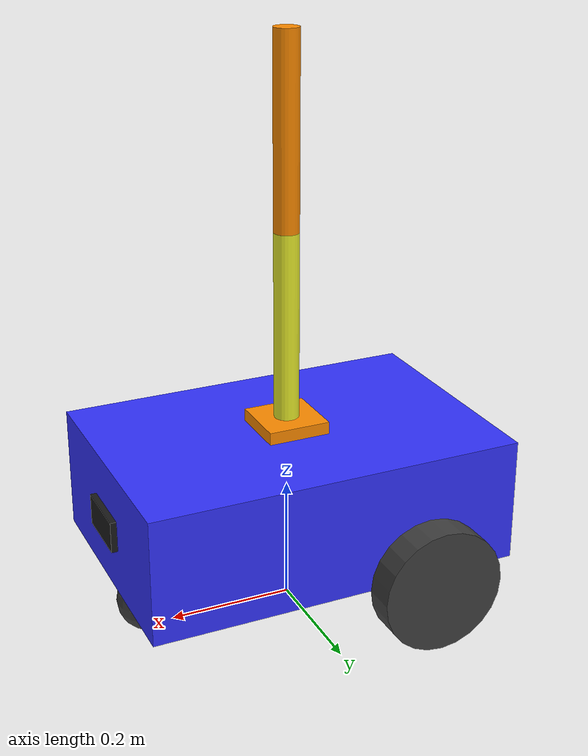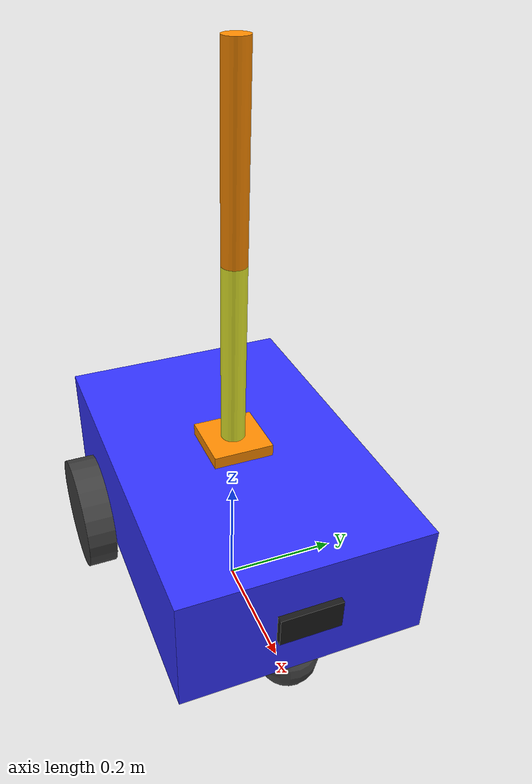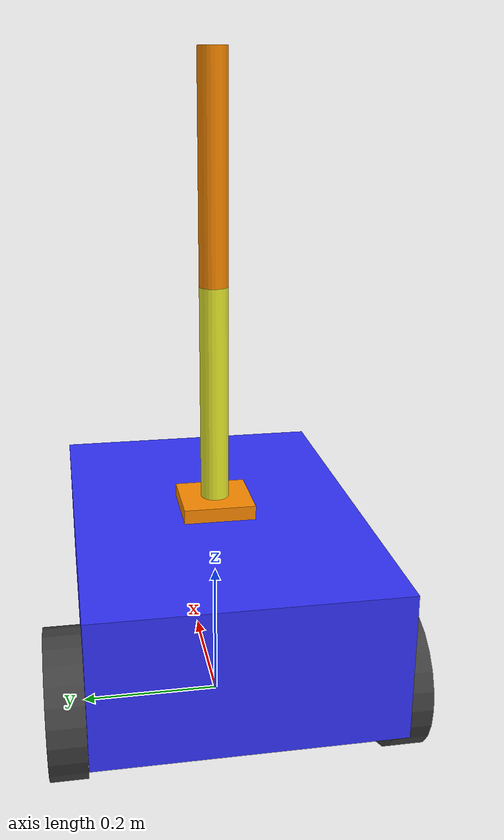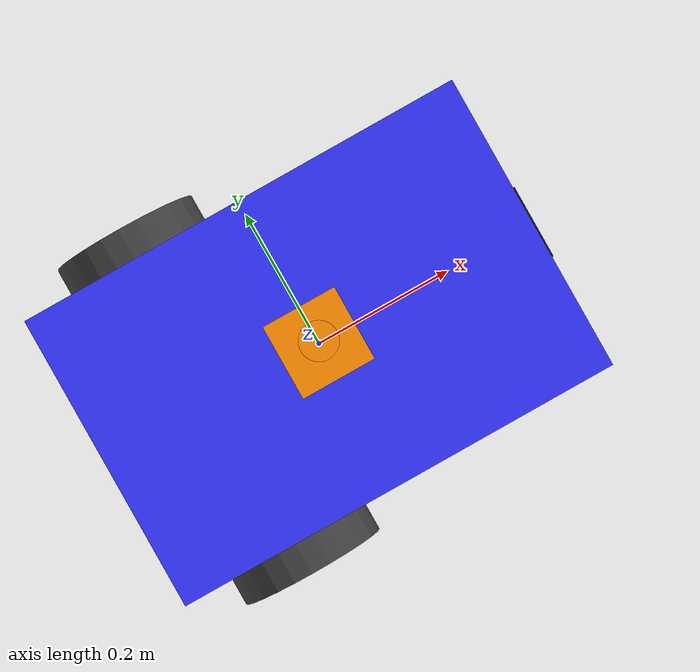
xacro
<?xml version="1.0"?>
<robot xmlns:xacro="http://www.ros.org/wiki/xacro">
    <!-- part Specifications -->
    <xacro:property name="main_base_length" value="0.6" />
    <xacro:property name="main_base_width" value="0.4" />
    <xacro:property name="main_base_height" value="0.2" />
    <xacro:property name="wheel_radius" value="0.1" />
    <xacro:property name="wheel_length" value="0.05" />
    <xacro:property name="caster_wheel_radius" value="0.05" />
    <xacro:include filename="common_properties.xacro" />

    <link name="base_footprint" />
    <link name="main_base">
        <visual>
            <geometry>
                <box size="${main_base_length} ${main_base_width} ${main_base_height}" />
            </geometry>
            <origin xyz="0 0 0" rpy="0 0 0" />
            <material name="blue" />
        </visual>
        <collision>
            <geometry>
                <box size="${main_base_length} ${main_base_width} ${main_base_height}" />
            </geometry>
            <origin xyz="0 0 0" rpy="0 0 0" />
        </collision>
        <xacro:box_inertial m="0.6" l="${main_base_length}" w="${main_base_width}" h="${main_base_height}" xyz="0 0 0" rpy="0 0 0" />
    </link>
    <joint name="main_base_footprint" type="fixed">
        <parent link="base_footprint" />
        <child link="main_base" />
        <origin xyz="0 0 ${0.5*main_base_height+wheel_radius}" rpy="0 0 0" />
    </joint>

    <link name="caster_wheel_link">
        <visual>
            <geometry>
                <sphere radius="${caster_wheel_radius}" />
            </geometry>
            <origin xyz="0 0 0" rpy="0 0 0" />
            <material name="grey" />
        </visual>

        <xacro:sphere_inertial m="0.1" r="${caster_wheel_radius}"
                               xyz="0 0 0" rpy="0 0 0" />

        <collision >
            <geometry>
                <sphere radius="${caster_wheel_radius}" />
                </geometry>
            <origin xyz="0 0 0" rpy="0 0 0" />
        </collision>
    </link>
    <joint name="base_caster_wheel_joint" type="fixed">
        <parent link="main_base" />
        <child link="caster_wheel_link" />
        <origin xyz="${0.4*main_base_length} 0 ${-(caster_wheel_radius+0.5*main_base_height)}" rpy="0 0 0" />
    </joint>

    <xacro:wheel_link prefix="left" x="-1" y="1" />
    <xacro:wheel_link prefix="right" x="-1" y="-1" />

    <xacro:include filename="camera.xacro" />
    <xacro:include filename="robot_arm.xacro" />

</robot>

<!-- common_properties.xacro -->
<robot xmlns:xacro="http://www.ros.org/wiki/xacro">

    <!-- materials -->
    <material name="white">
        <color rgba="1 1 1 1" />
    </material>

    <material name="yellow">
        <color rgba="0.92 0.94 0.17 1" />
    </material>

    <material name="grey">
        <color rgba="0.25 0.25 0.25 1"/>
    </material>

    <material name="orange">
        <color rgba="1 0.55 0 1"/>
    </material>

    <material name="blue">
        <color rgba="0.2 0.2 1 1"/>
    </material>

    <material name="red">
        <color rgba="1 0 0 1"/>
    </material>

    <material name="black">
        <color rgba="0.1 0.1 0.1 1"/>
    </material>

    <material name="silver">
        <color rgba="0.6 0.6 0.6 1"/>
    </material>

    <!-- Inertials -->
    <xacro:macro name="box_inertial" params="m l w h xyz rpy" >
        <inertial>
            <origin xyz="${xyz}" rpy="${rpy}" />
            <mass value="${m}" />
            <inertia ixx="${(m/12) * (h*h + l*l)}" ixy="0" ixz="0"
                     iyy="${(m/12) * (w*w + l*l)}" iyz="0"
                     izz="${(m/12) * (w*w + h*h)}" />
        </inertial>
    </xacro:macro>
    <xacro:macro name="inertial_box" params="mass x y z *origin">
        <inertial>
            <xacro:insert_block name="origin"/>
            <mass value="${mass}" />
            <inertia ixx="${(1/12) * mass * (y*y+z*z)}" ixy="0.0" ixz="0.0"
                    iyy="${(1/12) * mass * (x*x+z*z)}" iyz="0.0"
                    izz="${(1/12) * mass * (x*x+y*y)}" />
        </inertial>
    </xacro:macro>

    <xacro:macro name="cylinder_inertial" params="m r l xyz rpy" >
        <inertial>
            <origin xyz="${xyz}" rpy="${rpy}" />
            <mass value="${m}" />
            <inertia ixx="${(m/12) * (3*r*r + l*l)}" ixy="0" ixz="0"
                     iyy="${(m/12) * (3*r*r + l*l)}" iyz="0"
                     izz="${(m*r*r)/2}" />
        </inertial>
    </xacro:macro>

    <xacro:macro name="sphere_inertial" params="m r xyz rpy" >
        <inertial>
            <origin xyz="${xyz}" rpy="${rpy}" />
            <mass value="${m}" />
            <inertia ixx="${(2*m*r*r)/5}" ixy="0" ixz="0"
                     iyy="${(2*m*r*r)/5}" iyz="0"
                     izz="${(2*m*r*r)/5}" />
        </inertial>
    </xacro:macro>

     <!-- Wheel -->
    <xacro:macro name="wheel_link" params="prefix x y">
        <link name="${prefix}_wheel_link">
            <visual>
                <geometry>
                    <cylinder radius="${wheel_radius}" length="${wheel_length}" />
                </geometry>
                <origin xyz="0 0 0" rpy="${pi/2} 0 0" />
                <material name="grey" />
            </visual>
            <xacro:cylinder_inertial m="1.0" r="${wheel_radius}" l="${wheel_length}"
                                     xyz="0 0 0" rpy="${pi/2} 0 0" />
        <collision >
                <geometry>
                    <cylinder radius="${wheel_radius}" length="${wheel_length}" />
                </geometry>
                <origin xyz="0 0 0" rpy="${pi/2} 0 0" />
        </collision>
        </link>

        <joint name="base_${prefix}_wheel_joint" type="continuous">
            <parent link="main_base" />
            <child link="${prefix}_wheel_link" />
            <origin xyz="${x*0.15} ${y*(main_base_width*0.5+0.5*wheel_length)} ${-wheel_radius}" rpy="0 0 0" />
            <axis xyz="0 1 0" />
        </joint>
    </xacro:macro>

</robot>

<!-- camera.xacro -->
<robot xmlns:xacro="http://www.ros.org/wiki/xacro">

    <xacro:property name="camera_length" value="0.01" />
    <xacro:property name="camera_width" value="0.1" />
    <xacro:property name="camera_height" value="0.05" />

    <link name="camera">
        <visual>
            <geometry>
                <box size="${camera_length} ${camera_width} ${camera_height}" />
                <origin xyz="0 0 0" rpy="0 0 0" />
            </geometry>
            <material name="black"/>
        </visual>
        <collision>
            <geometry>
                <box size="${camera_length} ${camera_width} ${camera_height}" />
                <origin xyz="0 0 0" rpy="0 0 0" />
            </geometry>
        </collision>
        <box_inertial m="0.2" l="${camera_length}" w="${camera_width}" h="${camera_height}" xyz="0 0 0" rpy="0 0 0" />
    </link>

    <joint name="base_camera" type="fixed" >
        <parent link="main_base" />
        <child link="camera" />
        <origin xyz="${0.5*(main_base_length+camera_length)} 0 0" rpy="0 0 0" />
    </joint>

    <gazebo reference="camera" >
        <material>Gazebo/Black</material>
    </gazebo>
</robot>

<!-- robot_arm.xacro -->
<robot xmlns:xacro="http://www.ros.org/wiki/xacro">
    <!-- part Specifications -->
    <xacro:property name="arm_base_mass" value="0.5" />
    <xacro:property name="arm_base_length" value="0.1" />
    <xacro:property name="arm_base_width" value="0.1" />
    <xacro:property name="arm_base_height" value="0.02" />
    <xacro:property name="arm_mass" value="0.3" />
    <xacro:property name="arm_radius" value="0.02" />
    <xacro:property name="arm_length" value="0.3" />

    <link name="arm_base">
        <visual>
            <geometry>
                <box size="${arm_base_length} ${arm_base_width} ${arm_base_height}" />
            </geometry>
            <origin xyz="0 0 0" rpy="0 0 0" />
            <material name="orange" />
        </visual>
        <collision>
            <geometry>
                <box size="${arm_base_length} ${arm_base_width} ${arm_base_height}" />
            </geometry>
            <origin xyz="0 0 0" rpy="0 0 0" />
        </collision>
        <xacro:box_inertial m="${arm_base_mass}" l="${arm_base_length}" w="${arm_base_width}"
                                     h="${arm_base_height}" xyz="0 0 0" rpy="0 0 0" />
    </link>
    <joint name="main_base_to_arm_base" type="fixed">
        <parent link="main_base" />
        <child link="arm_base" />
        <origin xyz="0 0 ${0.5*(main_base_height+arm_base_height)}" rpy="0 0 0" />
    </joint>

    <link name="fore_arm">
        <visual>
            <geometry>
                <cylinder radius="${arm_radius}" length="${arm_length}" />
            </geometry>
            <origin xyz="0 0 ${0.5*arm_length}" rpy="0 0 0" />
            <material name="yellow" />
        </visual>
        <collision>
            <geometry>
                <cylinder radius="${arm_radius}" length="${arm_length}" />
            </geometry>
            <origin xyz="0 0 0" rpy="0 0 0" />
        </collision>
        <xacro:cylinder_inertial m="${arm_mass}" r="${arm_radius}" l="${arm_length}"
                                     xyz="0 0 0" rpy="0 0 0" />
    </link>
    <joint name="forearm_to_base" type="revolute">
        <parent link="arm_base" />
        <child link="fore_arm" />
        <origin xyz="0 0 ${0.5*(arm_base_height)}" rpy="0 0 0"/>
        <dynamics friction="0.05" damping="0.1" />
        <axis xyz="0 1 0" />
        <limit effort="100" velocity="100" lower="0" upper="${pi/2}" />
    </joint>
    <link name="hand">
        <visual>
            <geometry>
                <cylinder radius="${arm_radius}" length="${arm_length}" />
            </geometry>
            <origin xyz="0 0 ${0.5*arm_length}" rpy="0 0 0" />
            <material name="orange" />
        </visual>
        <collision>
            <geometry>
                <cylinder radius="${arm_radius}" length="${arm_length}" />
            </geometry>
            <origin xyz="0 0 ${0.5*arm_length}" rpy="0 0 0" />
        </collision>
        <xacro:cylinder_inertial m="${arm_mass}" r="${arm_radius}" l="${arm_length}"
                                     xyz="0 0 0" rpy="0 0 0" />
    </link>
    <joint name="hand_to_forearm" type="revolute">
        <parent link="fore_arm" />
        <child link="hand" />
        <origin xyz="0 0 ${arm_length}" rpy="0 0 0"/>
        <dynamics friction="0.05" damping="0.1" />
        <axis xyz="0 1 0" />
        <limit effort="100" velocity="100" lower="0" upper="${pi/2}" />
    </joint>
</robot>
